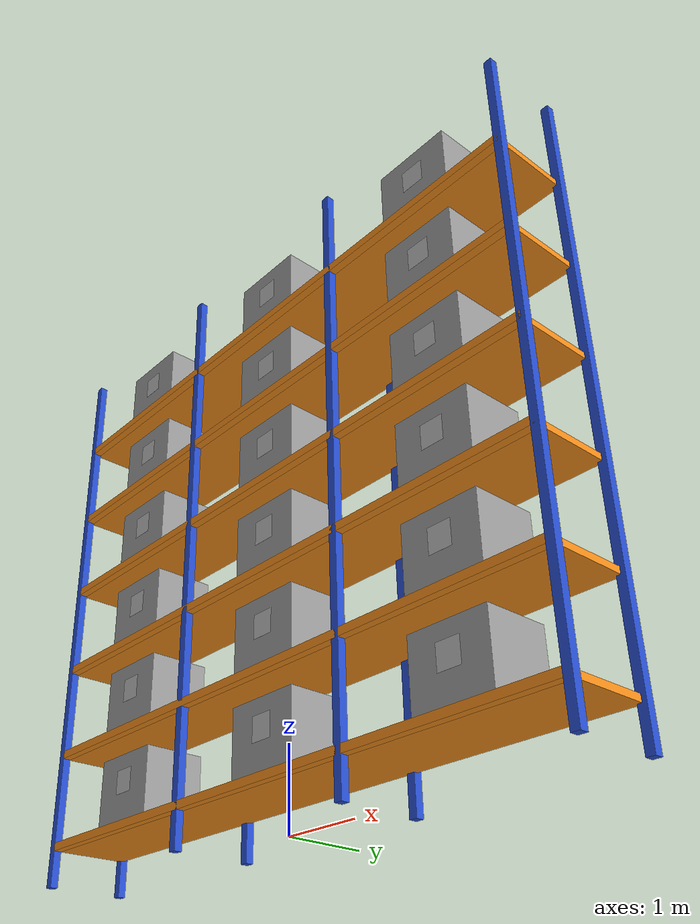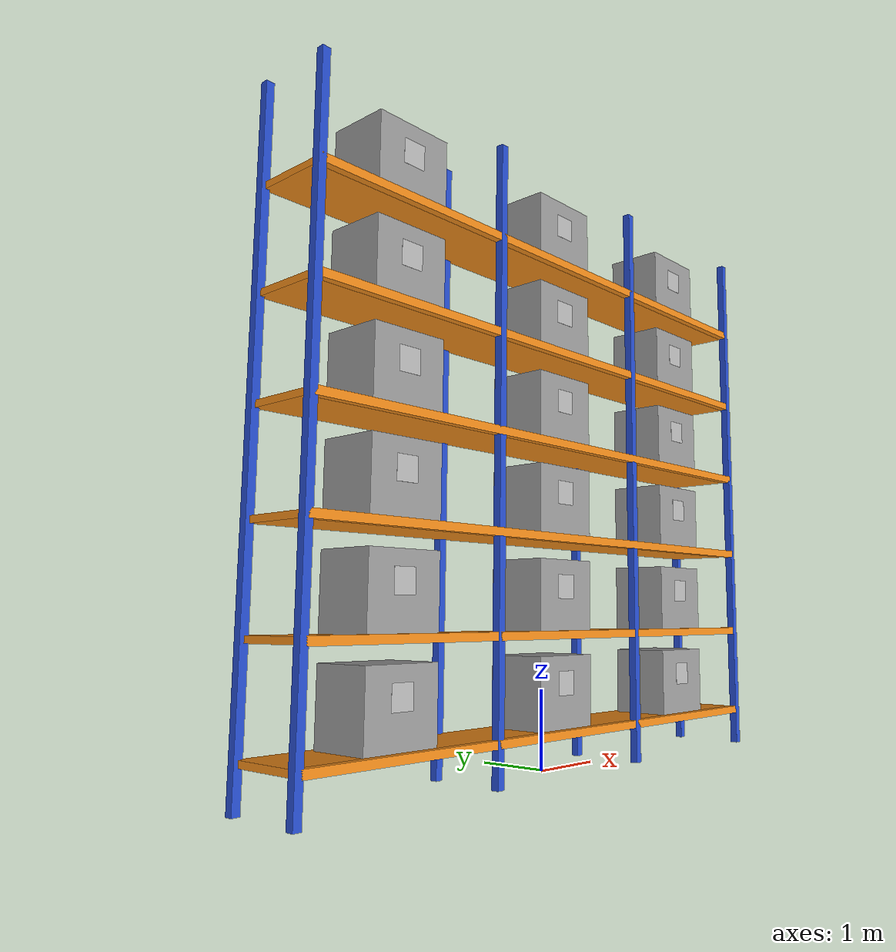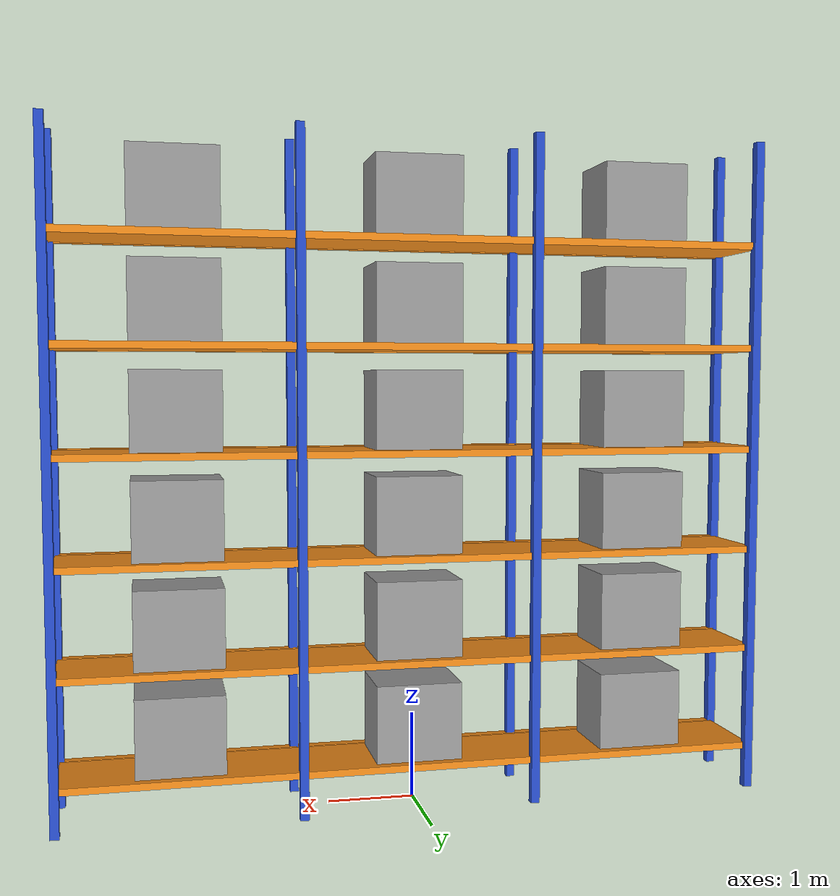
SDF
<?xml version='1.0'?>
<sdf version='1.6'>
  <model name='warehouse_rack'>
    <static>1</static>
    <link name='upright_0_f'>
      <pose>-4.0500 -0.5000 3.8500 0 0 0</pose>
      <collision name='upright_0_f_col'>
        <geometry><box><size>0.1000 0.1000 7.7000</size></box></geometry>
      </collision>
      <visual name='upright_0_f_vis'>
        <geometry><box><size>0.1000 0.1000 7.7000</size></box></geometry>
        <material><script>
          <uri>file://media/materials/scripts/gazebo.material</uri>
          <name>Gazebo/Blue</name>
        </script></material>
      </visual>
    </link>
    <link name='upright_0_b'>
      <pose>-4.0500 0.5000 3.8500 0 0 0</pose>
      <collision name='upright_0_b_col'>
        <geometry><box><size>0.1000 0.1000 7.7000</size></box></geometry>
      </collision>
      <visual name='upright_0_b_vis'>
        <geometry><box><size>0.1000 0.1000 7.7000</size></box></geometry>
        <material><script>
          <uri>file://media/materials/scripts/gazebo.material</uri>
          <name>Gazebo/Blue</name>
        </script></material>
      </visual>
    </link>
    <link name='upright_1_f'>
      <pose>-1.3500 -0.5000 3.8500 0 0 0</pose>
      <collision name='upright_1_f_col'>
        <geometry><box><size>0.1000 0.1000 7.7000</size></box></geometry>
      </collision>
      <visual name='upright_1_f_vis'>
        <geometry><box><size>0.1000 0.1000 7.7000</size></box></geometry>
        <material><script>
          <uri>file://media/materials/scripts/gazebo.material</uri>
          <name>Gazebo/Blue</name>
        </script></material>
      </visual>
    </link>
    <link name='upright_1_b'>
      <pose>-1.3500 0.5000 3.8500 0 0 0</pose>
      <collision name='upright_1_b_col'>
        <geometry><box><size>0.1000 0.1000 7.7000</size></box></geometry>
      </collision>
      <visual name='upright_1_b_vis'>
        <geometry><box><size>0.1000 0.1000 7.7000</size></box></geometry>
        <material><script>
          <uri>file://media/materials/scripts/gazebo.material</uri>
          <name>Gazebo/Blue</name>
        </script></material>
      </visual>
    </link>
    <link name='upright_2_f'>
      <pose>1.3500 -0.5000 3.8500 0 0 0</pose>
      <collision name='upright_2_f_col'>
        <geometry><box><size>0.1000 0.1000 7.7000</size></box></geometry>
      </collision>
      <visual name='upright_2_f_vis'>
        <geometry><box><size>0.1000 0.1000 7.7000</size></box></geometry>
        <material><script>
          <uri>file://media/materials/scripts/gazebo.material</uri>
          <name>Gazebo/Blue</name>
        </script></material>
      </visual>
    </link>
    <link name='upright_2_b'>
      <pose>1.3500 0.5000 3.8500 0 0 0</pose>
      <collision name='upright_2_b_col'>
        <geometry><box><size>0.1000 0.1000 7.7000</size></box></geometry>
      </collision>
      <visual name='upright_2_b_vis'>
        <geometry><box><size>0.1000 0.1000 7.7000</size></box></geometry>
        <material><script>
          <uri>file://media/materials/scripts/gazebo.material</uri>
          <name>Gazebo/Blue</name>
        </script></material>
      </visual>
    </link>
    <link name='upright_3_f'>
      <pose>4.0500 -0.5000 3.8500 0 0 0</pose>
      <collision name='upright_3_f_col'>
        <geometry><box><size>0.1000 0.1000 7.7000</size></box></geometry>
      </collision>
      <visual name='upright_3_f_vis'>
        <geometry><box><size>0.1000 0.1000 7.7000</size></box></geometry>
        <material><script>
          <uri>file://media/materials/scripts/gazebo.material</uri>
          <name>Gazebo/Blue</name>
        </script></material>
      </visual>
    </link>
    <link name='upright_3_b'>
      <pose>4.0500 0.5000 3.8500 0 0 0</pose>
      <collision name='upright_3_b_col'>
        <geometry><box><size>0.1000 0.1000 7.7000</size></box></geometry>
      </collision>
      <visual name='upright_3_b_vis'>
        <geometry><box><size>0.1000 0.1000 7.7000</size></box></geometry>
        <material><script>
          <uri>file://media/materials/scripts/gazebo.material</uri>
          <name>Gazebo/Blue</name>
        </script></material>
      </visual>
    </link>
    <link name='deck_0'>
      <pose>0.0000 0.0000 0.5000 0 0 0</pose>
      <collision name='deck_0_col'>
        <geometry><box><size>8.1000 1.0000 0.0800</size></box></geometry>
      </collision>
      <visual name='deck_0_vis'>
        <geometry><box><size>8.1000 1.0000 0.0800</size></box></geometry>
        <material><script>
          <uri>file://media/materials/scripts/gazebo.material</uri>
          <name>Gazebo/Orange</name>
        </script></material>
      </visual>
    </link>
    <link name='frontbeam_0'>
      <pose>0.0000 -0.5000 0.5000 0 0 0</pose>
      <collision name='frontbeam_0_col'>
        <geometry><box><size>8.1000 0.1000 0.1000</size></box></geometry>
      </collision>
      <visual name='frontbeam_0_vis'>
        <geometry><box><size>8.1000 0.1000 0.1000</size></box></geometry>
        <material><script>
          <uri>file://media/materials/scripts/gazebo.material</uri>
          <name>Gazebo/Orange</name>
        </script></material>
      </visual>
    </link>
    <link name='tag_beam_level_0_bay_0'>
      <pose>-2.7000 -0.4010 1.1000 0 0 0</pose>
      <visual name='tag_beam_level_0_bay_0_vis'>
        <geometry><box><size>0.30 0.001 0.30</size></box></geometry>
        <material>
          <script>
            <uri>model://apriltag_marker/materials/scripts</uri>
            <uri>model://apriltag_marker/materials/textures</uri>
            <name>Apriltag_marker</name>
          </script>
        </material>
      </visual>
    </link>
    <link name='tag_beam_level_0_bay_1'>
      <pose>0.0000 -0.4010 1.1000 0 0 0</pose>
      <visual name='tag_beam_level_0_bay_1_vis'>
        <geometry><box><size>0.30 0.001 0.30</size></box></geometry>
        <material>
          <script>
            <uri>model://apriltag_marker/materials/scripts</uri>
            <uri>model://apriltag_marker/materials/textures</uri>
            <name>Apriltag_marker</name>
          </script>
        </material>
      </visual>
    </link>
    <link name='tag_beam_level_0_bay_2'>
      <pose>2.7000 -0.4010 1.1000 0 0 0</pose>
      <visual name='tag_beam_level_0_bay_2_vis'>
        <geometry><box><size>0.30 0.001 0.30</size></box></geometry>
        <material>
          <script>
            <uri>model://apriltag_marker/materials/scripts</uri>
            <uri>model://apriltag_marker/materials/textures</uri>
            <name>Apriltag_marker</name>
          </script>
        </material>
      </visual>
    </link>
    <link name='deck_1'>
      <pose>0.0000 0.0000 1.7000 0 0 0</pose>
      <collision name='deck_1_col'>
        <geometry><box><size>8.1000 1.0000 0.0800</size></box></geometry>
      </collision>
      <visual name='deck_1_vis'>
        <geometry><box><size>8.1000 1.0000 0.0800</size></box></geometry>
        <material><script>
          <uri>file://media/materials/scripts/gazebo.material</uri>
          <name>Gazebo/Orange</name>
        </script></material>
      </visual>
    </link>
    <link name='frontbeam_1'>
      <pose>0.0000 -0.5000 1.7000 0 0 0</pose>
      <collision name='frontbeam_1_col'>
        <geometry><box><size>8.1000 0.1000 0.1000</size></box></geometry>
      </collision>
      <visual name='frontbeam_1_vis'>
        <geometry><box><size>8.1000 0.1000 0.1000</size></box></geometry>
        <material><script>
          <uri>file://media/materials/scripts/gazebo.material</uri>
          <name>Gazebo/Orange</name>
        </script></material>
      </visual>
    </link>
    <link name='tag_beam_level_1_bay_0'>
      <pose>-2.7000 -0.4010 2.3000 0 0 0</pose>
      <visual name='tag_beam_level_1_bay_0_vis'>
        <geometry><box><size>0.30 0.001 0.30</size></box></geometry>
        <material>
          <script>
            <uri>model://apriltag_marker/materials/scripts</uri>
            <uri>model://apriltag_marker/materials/textures</uri>
            <name>Apriltag_marker</name>
          </script>
        </material>
      </visual>
    </link>
    <link name='tag_beam_level_1_bay_1'>
      <pose>0.0000 -0.4010 2.3000 0 0 0</pose>
      <visual name='tag_beam_level_1_bay_1_vis'>
        <geometry><box><size>0.30 0.001 0.30</size></box></geometry>
        <material>
          <script>
            <uri>model://apriltag_marker/materials/scripts</uri>
            <uri>model://apriltag_marker/materials/textures</uri>
            <name>Apriltag_marker</name>
          </script>
        </material>
      </visual>
    </link>
    <link name='tag_beam_level_1_bay_2'>
      <pose>2.7000 -0.4010 2.3000 0 0 0</pose>
      <visual name='tag_beam_level_1_bay_2_vis'>
        <geometry><box><size>0.30 0.001 0.30</size></box></geometry>
        <material>
          <script>
            <uri>model://apriltag_marker/materials/scripts</uri>
            <uri>model://apriltag_marker/materials/textures</uri>
            <name>Apriltag_marker</name>
          </script>
        </material>
      </visual>
    </link>
    <link name='deck_2'>
      <pose>0.0000 0.0000 2.9000 0 0 0</pose>
      <collision name='deck_2_col'>
        <geometry><box><size>8.1000 1.0000 0.0800</size></box></geometry>
      </collision>
      <visual name='deck_2_vis'>
        <geometry><box><size>8.1000 1.0000 0.0800</size></box></geometry>
        <material><script>
          <uri>file://media/materials/scripts/gazebo.material</uri>
          <name>Gazebo/Orange</name>
        </script></material>
      </visual>
    </link>
    <link name='frontbeam_2'>
      <pose>0.0000 -0.5000 2.9000 0 0 0</pose>
      <collision name='frontbeam_2_col'>
        <geometry><box><size>8.1000 0.1000 0.1000</size></box></geometry>
      </collision>
      <visual name='frontbeam_2_vis'>
        <geometry><box><size>8.1000 0.1000 0.1000</size></box></geometry>
        <material><script>
          <uri>file://media/materials/scripts/gazebo.material</uri>
          <name>Gazebo/Orange</name>
        </script></material>
      </visual>
    </link>
    <link name='tag_beam_level_2_bay_0'>
      <pose>-2.7000 -0.4010 3.5000 0 0 0</pose>
      <visual name='tag_beam_level_2_bay_0_vis'>
        <geometry><box><size>0.30 0.001 0.30</size></box></geometry>
        <material>
          <script>
            <uri>model://apriltag_marker/materials/scripts</uri>
            <uri>model://apriltag_marker/materials/textures</uri>
            <name>Apriltag_marker</name>
          </script>
        </material>
      </visual>
    </link>
    <link name='tag_beam_level_2_bay_1'>
      <pose>0.0000 -0.4010 3.5000 0 0 0</pose>
      <visual name='tag_beam_level_2_bay_1_vis'>
        <geometry><box><size>0.30 0.001 0.30</size></box></geometry>
        <material>
          <script>
            <uri>model://apriltag_marker/materials/scripts</uri>
            <uri>model://apriltag_marker/materials/textures</uri>
            <name>Apriltag_marker</name>
          </script>
        </material>
      </visual>
    </link>
    <link name='tag_beam_level_2_bay_2'>
      <pose>2.7000 -0.4010 3.5000 0 0 0</pose>
      <visual name='tag_beam_level_2_bay_2_vis'>
        <geometry><box><size>0.30 0.001 0.30</size></box></geometry>
        <material>
          <script>
            <uri>model://apriltag_marker/materials/scripts</uri>
            <uri>model://apriltag_marker/materials/textures</uri>
            <name>Apriltag_marker</name>
          </script>
        </material>
      </visual>
    </link>
    <link name='deck_3'>
      <pose>0.0000 0.0000 4.1000 0 0 0</pose>
      <collision name='deck_3_col'>
        <geometry><box><size>8.1000 1.0000 0.0800</size></box></geometry>
      </collision>
      <visual name='deck_3_vis'>
        <geometry><box><size>8.1000 1.0000 0.0800</size></box></geometry>
        <material><script>
          <uri>file://media/materials/scripts/gazebo.material</uri>
          <name>Gazebo/Orange</name>
        </script></material>
      </visual>
    </link>
    <link name='frontbeam_3'>
      <pose>0.0000 -0.5000 4.1000 0 0 0</pose>
      <collision name='frontbeam_3_col'>
        <geometry><box><size>8.1000 0.1000 0.1000</size></box></geometry>
      </collision>
      <visual name='frontbeam_3_vis'>
        <geometry><box><size>8.1000 0.1000 0.1000</size></box></geometry>
        <material><script>
          <uri>file://media/materials/scripts/gazebo.material</uri>
          <name>Gazebo/Orange</name>
        </script></material>
      </visual>
    </link>
    <link name='tag_beam_level_3_bay_0'>
      <pose>-2.7000 -0.4010 4.7000 0 0 0</pose>
      <visual name='tag_beam_level_3_bay_0_vis'>
        <geometry><box><size>0.30 0.001 0.30</size></box></geometry>
        <material>
          <script>
            <uri>model://apriltag_marker/materials/scripts</uri>
            <uri>model://apriltag_marker/materials/textures</uri>
            <name>Apriltag_marker</name>
          </script>
        </material>
      </visual>
    </link>
    <link name='tag_beam_level_3_bay_1'>
      <pose>0.0000 -0.4010 4.7000 0 0 0</pose>
      <visual name='tag_beam_level_3_bay_1_vis'>
        <geometry><box><size>0.30 0.001 0.30</size></box></geometry>
        <material>
          <script>
            <uri>model://apriltag_marker/materials/scripts</uri>
            <uri>model://apriltag_marker/materials/textures</uri>
            <name>Apriltag_marker</name>
          </script>
        </material>
      </visual>
    </link>
    <link name='tag_beam_level_3_bay_2'>
      <pose>2.7000 -0.4010 4.7000 0 0 0</pose>
      <visual name='tag_beam_level_3_bay_2_vis'>
        <geometry><box><size>0.30 0.001 0.30</size></box></geometry>
        <material>
          <script>
            <uri>model://apriltag_marker/materials/scripts</uri>
            <uri>model://apriltag_marker/materials/textures</uri>
            <name>Apriltag_marker</name>
          </script>
        </material>
      </visual>
    </link>
    <link name='deck_4'>
      <pose>0.0000 0.0000 5.3000 0 0 0</pose>
      <collision name='deck_4_col'>
        <geometry><box><size>8.1000 1.0000 0.0800</size></box></geometry>
      </collision>
      <visual name='deck_4_vis'>
        <geometry><box><size>8.1000 1.0000 0.0800</size></box></geometry>
        <material><script>
          <uri>file://media/materials/scripts/gazebo.material</uri>
          <name>Gazebo/Orange</name>
        </script></material>
      </visual>
    </link>
    <link name='frontbeam_4'>
      <pose>0.0000 -0.5000 5.3000 0 0 0</pose>
      <collision name='frontbeam_4_col'>
        <geometry><box><size>8.1000 0.1000 0.1000</size></box></geometry>
      </collision>
      <visual name='frontbeam_4_vis'>
        <geometry><box><size>8.1000 0.1000 0.1000</size></box></geometry>
        <material><script>
          <uri>file://media/materials/scripts/gazebo.material</uri>
          <name>Gazebo/Orange</name>
        </script></material>
      </visual>
    </link>
    <link name='tag_beam_level_4_bay_0'>
      <pose>-2.7000 -0.4010 5.9000 0 0 0</pose>
      <visual name='tag_beam_level_4_bay_0_vis'>
        <geometry><box><size>0.30 0.001 0.30</size></box></geometry>
        <material>
          <script>
            <uri>model://apriltag_marker/materials/scripts</uri>
            <uri>model://apriltag_marker/materials/textures</uri>
            <name>Apriltag_marker</name>
          </script>
        </material>
      </visual>
    </link>
    <link name='tag_beam_level_4_bay_1'>
      <pose>0.0000 -0.4010 5.9000 0 0 0</pose>
      <visual name='tag_beam_level_4_bay_1_vis'>
        <geometry><box><size>0.30 0.001 0.30</size></box></geometry>
        <material>
          <script>
            <uri>model://apriltag_marker/materials/scripts</uri>
            <uri>model://apriltag_marker/materials/textures</uri>
            <name>Apriltag_marker</name>
          </script>
        </material>
      </visual>
    </link>
    <link name='tag_beam_level_4_bay_2'>
      <pose>2.7000 -0.4010 5.9000 0 0 0</pose>
      <visual name='tag_beam_level_4_bay_2_vis'>
        <geometry><box><size>0.30 0.001 0.30</size></box></geometry>
        <material>
          <script>
            <uri>model://apriltag_marker/materials/scripts</uri>
            <uri>model://apriltag_marker/materials/textures</uri>
            <name>Apriltag_marker</name>
          </script>
        </material>
      </visual>
    </link>
    <link name='deck_5'>
      <pose>0.0000 0.0000 6.5000 0 0 0</pose>
      <collision name='deck_5_col'>
        <geometry><box><size>8.1000 1.0000 0.0800</size></box></geometry>
      </collision>
      <visual name='deck_5_vis'>
        <geometry><box><size>8.1000 1.0000 0.0800</size></box></geometry>
        <material><script>
          <uri>file://media/materials/scripts/gazebo.material</uri>
          <name>Gazebo/Orange</name>
        </script></material>
      </visual>
    </link>
    <link name='frontbeam_5'>
      <pose>0.0000 -0.5000 6.5000 0 0 0</pose>
      <collision name='frontbeam_5_col'>
        <geometry><box><size>8.1000 0.1000 0.1000</size></box></geometry>
      </collision>
      <visual name='frontbeam_5_vis'>
        <geometry><box><size>8.1000 0.1000 0.1000</size></box></geometry>
        <material><script>
          <uri>file://media/materials/scripts/gazebo.material</uri>
          <name>Gazebo/Orange</name>
        </script></material>
      </visual>
    </link>
    <link name='tag_beam_level_5_bay_0'>
      <pose>-2.7000 -0.4010 7.1000 0 0 0</pose>
      <visual name='tag_beam_level_5_bay_0_vis'>
        <geometry><box><size>0.30 0.001 0.30</size></box></geometry>
        <material>
          <script>
            <uri>model://apriltag_marker/materials/scripts</uri>
            <uri>model://apriltag_marker/materials/textures</uri>
            <name>Apriltag_marker</name>
          </script>
        </material>
      </visual>
    </link>
    <link name='tag_beam_level_5_bay_1'>
      <pose>0.0000 -0.4010 7.1000 0 0 0</pose>
      <visual name='tag_beam_level_5_bay_1_vis'>
        <geometry><box><size>0.30 0.001 0.30</size></box></geometry>
        <material>
          <script>
            <uri>model://apriltag_marker/materials/scripts</uri>
            <uri>model://apriltag_marker/materials/textures</uri>
            <name>Apriltag_marker</name>
          </script>
        </material>
      </visual>
    </link>
    <link name='tag_beam_level_5_bay_2'>
      <pose>2.7000 -0.4010 7.1000 0 0 0</pose>
      <visual name='tag_beam_level_5_bay_2_vis'>
        <geometry><box><size>0.30 0.001 0.30</size></box></geometry>
        <material>
          <script>
            <uri>model://apriltag_marker/materials/scripts</uri>
            <uri>model://apriltag_marker/materials/textures</uri>
            <name>Apriltag_marker</name>
          </script>
        </material>
      </visual>
    </link>
    <link name='pallet_0_0'>
      <pose>-2.7000 0.0000 0.9900 0 0 0</pose>
      <collision name='pallet_0_0_col'>
        <geometry><box><size>1.0000 0.8000 0.9000</size></box></geometry>
      </collision>
      <visual name='pallet_0_0_vis'>
        <geometry><box><size>1.0000 0.8000 0.9000</size></box></geometry>
        <material><script>
          <uri>file://media/materials/scripts/gazebo.material</uri>
          <name>Gazebo/Grey</name>
        </script></material>
      </visual>
    </link>
    <link name='pallet_0_1'>
      <pose>0.0000 0.0000 0.9900 0 0 0</pose>
      <collision name='pallet_0_1_col'>
        <geometry><box><size>1.0000 0.8000 0.9000</size></box></geometry>
      </collision>
      <visual name='pallet_0_1_vis'>
        <geometry><box><size>1.0000 0.8000 0.9000</size></box></geometry>
        <material><script>
          <uri>file://media/materials/scripts/gazebo.material</uri>
          <name>Gazebo/Grey</name>
        </script></material>
      </visual>
    </link>
    <link name='pallet_0_2'>
      <pose>2.7000 0.0000 0.9900 0 0 0</pose>
      <collision name='pallet_0_2_col'>
        <geometry><box><size>1.0000 0.8000 0.9000</size></box></geometry>
      </collision>
      <visual name='pallet_0_2_vis'>
        <geometry><box><size>1.0000 0.8000 0.9000</size></box></geometry>
        <material><script>
          <uri>file://media/materials/scripts/gazebo.material</uri>
          <name>Gazebo/Grey</name>
        </script></material>
      </visual>
    </link>
    <link name='pallet_1_0'>
      <pose>-2.7000 0.0000 2.1900 0 0 0</pose>
      <collision name='pallet_1_0_col'>
        <geometry><box><size>1.0000 0.8000 0.9000</size></box></geometry>
      </collision>
      <visual name='pallet_1_0_vis'>
        <geometry><box><size>1.0000 0.8000 0.9000</size></box></geometry>
        <material><script>
          <uri>file://media/materials/scripts/gazebo.material</uri>
          <name>Gazebo/Grey</name>
        </script></material>
      </visual>
    </link>
    <link name='pallet_1_1'>
      <pose>0.0000 0.0000 2.1900 0 0 0</pose>
      <collision name='pallet_1_1_col'>
        <geometry><box><size>1.0000 0.8000 0.9000</size></box></geometry>
      </collision>
      <visual name='pallet_1_1_vis'>
        <geometry><box><size>1.0000 0.8000 0.9000</size></box></geometry>
        <material><script>
          <uri>file://media/materials/scripts/gazebo.material</uri>
          <name>Gazebo/Grey</name>
        </script></material>
      </visual>
    </link>
    <link name='pallet_1_2'>
      <pose>2.7000 0.0000 2.1900 0 0 0</pose>
      <collision name='pallet_1_2_col'>
        <geometry><box><size>1.0000 0.8000 0.9000</size></box></geometry>
      </collision>
      <visual name='pallet_1_2_vis'>
        <geometry><box><size>1.0000 0.8000 0.9000</size></box></geometry>
        <material><script>
          <uri>file://media/materials/scripts/gazebo.material</uri>
          <name>Gazebo/Grey</name>
        </script></material>
      </visual>
    </link>
    <link name='pallet_2_0'>
      <pose>-2.7000 0.0000 3.3900 0 0 0</pose>
      <collision name='pallet_2_0_col'>
        <geometry><box><size>1.0000 0.8000 0.9000</size></box></geometry>
      </collision>
      <visual name='pallet_2_0_vis'>
        <geometry><box><size>1.0000 0.8000 0.9000</size></box></geometry>
        <material><script>
          <uri>file://media/materials/scripts/gazebo.material</uri>
          <name>Gazebo/Grey</name>
        </script></material>
      </visual>
    </link>
    <link name='pallet_2_1'>
      <pose>0.0000 0.0000 3.3900 0 0 0</pose>
      <collision name='pallet_2_1_col'>
        <geometry><box><size>1.0000 0.8000 0.9000</size></box></geometry>
      </collision>
      <visual name='pallet_2_1_vis'>
        <geometry><box><size>1.0000 0.8000 0.9000</size></box></geometry>
        <material><script>
          <uri>file://media/materials/scripts/gazebo.material</uri>
          <name>Gazebo/Grey</name>
        </script></material>
      </visual>
    </link>
    <link name='pallet_2_2'>
      <pose>2.7000 0.0000 3.3900 0 0 0</pose>
      <collision name='pallet_2_2_col'>
        <geometry><box><size>1.0000 0.8000 0.9000</size></box></geometry>
      </collision>
      <visual name='pallet_2_2_vis'>
        <geometry><box><size>1.0000 0.8000 0.9000</size></box></geometry>
        <material><script>
          <uri>file://media/materials/scripts/gazebo.material</uri>
          <name>Gazebo/Grey</name>
        </script></material>
      </visual>
    </link>
    <link name='pallet_3_0'>
      <pose>-2.7000 0.0000 4.5900 0 0 0</pose>
      <collision name='pallet_3_0_col'>
        <geometry><box><size>1.0000 0.8000 0.9000</size></box></geometry>
      </collision>
      <visual name='pallet_3_0_vis'>
        <geometry><box><size>1.0000 0.8000 0.9000</size></box></geometry>
        <material><script>
          <uri>file://media/materials/scripts/gazebo.material</uri>
          <name>Gazebo/Grey</name>
        </script></material>
      </visual>
    </link>
    <link name='pallet_3_1'>
      <pose>0.0000 0.0000 4.5900 0 0 0</pose>
      <collision name='pallet_3_1_col'>
        <geometry><box><size>1.0000 0.8000 0.9000</size></box></geometry>
      </collision>
      <visual name='pallet_3_1_vis'>
        <geometry><box><size>1.0000 0.8000 0.9000</size></box></geometry>
        <material><script>
          <uri>file://media/materials/scripts/gazebo.material</uri>
          <name>Gazebo/Grey</name>
        </script></material>
      </visual>
    </link>
    <link name='pallet_3_2'>
      <pose>2.7000 0.0000 4.5900 0 0 0</pose>
      <collision name='pallet_3_2_col'>
        <geometry><box><size>1.0000 0.8000 0.9000</size></box></geometry>
      </collision>
      <visual name='pallet_3_2_vis'>
        <geometry><box><size>1.0000 0.8000 0.9000</size></box></geometry>
        <material><script>
          <uri>file://media/materials/scripts/gazebo.material</uri>
          <name>Gazebo/Grey</name>
        </script></material>
      </visual>
    </link>
    <link name='pallet_4_0'>
      <pose>-2.7000 0.0000 5.7900 0 0 0</pose>
      <collision name='pallet_4_0_col'>
        <geometry><box><size>1.0000 0.8000 0.9000</size></box></geometry>
      </collision>
      <visual name='pallet_4_0_vis'>
        <geometry><box><size>1.0000 0.8000 0.9000</size></box></geometry>
        <material><script>
          <uri>file://media/materials/scripts/gazebo.material</uri>
          <name>Gazebo/Grey</name>
        </script></material>
      </visual>
    </link>
    <link name='pallet_4_1'>
      <pose>0.0000 0.0000 5.7900 0 0 0</pose>
      <collision name='pallet_4_1_col'>
        <geometry><box><size>1.0000 0.8000 0.9000</size></box></geometry>
      </collision>
      <visual name='pallet_4_1_vis'>
        <geometry><box><size>1.0000 0.8000 0.9000</size></box></geometry>
        <material><script>
          <uri>file://media/materials/scripts/gazebo.material</uri>
          <name>Gazebo/Grey</name>
        </script></material>
      </visual>
    </link>
    <link name='pallet_4_2'>
      <pose>2.7000 0.0000 5.7900 0 0 0</pose>
      <collision name='pallet_4_2_col'>
        <geometry><box><size>1.0000 0.8000 0.9000</size></box></geometry>
      </collision>
      <visual name='pallet_4_2_vis'>
        <geometry><box><size>1.0000 0.8000 0.9000</size></box></geometry>
        <material><script>
          <uri>file://media/materials/scripts/gazebo.material</uri>
          <name>Gazebo/Grey</name>
        </script></material>
      </visual>
    </link>
    <link name='pallet_5_0'>
      <pose>-2.7000 0.0000 6.9900 0 0 0</pose>
      <collision name='pallet_5_0_col'>
        <geometry><box><size>1.0000 0.8000 0.9000</size></box></geometry>
      </collision>
      <visual name='pallet_5_0_vis'>
        <geometry><box><size>1.0000 0.8000 0.9000</size></box></geometry>
        <material><script>
          <uri>file://media/materials/scripts/gazebo.material</uri>
          <name>Gazebo/Grey</name>
        </script></material>
      </visual>
    </link>
    <link name='pallet_5_1'>
      <pose>0.0000 0.0000 6.9900 0 0 0</pose>
      <collision name='pallet_5_1_col'>
        <geometry><box><size>1.0000 0.8000 0.9000</size></box></geometry>
      </collision>
      <visual name='pallet_5_1_vis'>
        <geometry><box><size>1.0000 0.8000 0.9000</size></box></geometry>
        <material><script>
          <uri>file://media/materials/scripts/gazebo.material</uri>
          <name>Gazebo/Grey</name>
        </script></material>
      </visual>
    </link>
    <link name='pallet_5_2'>
      <pose>2.7000 0.0000 6.9900 0 0 0</pose>
      <collision name='pallet_5_2_col'>
        <geometry><box><size>1.0000 0.8000 0.9000</size></box></geometry>
      </collision>
      <visual name='pallet_5_2_vis'>
        <geometry><box><size>1.0000 0.8000 0.9000</size></box></geometry>
        <material><script>
          <uri>file://media/materials/scripts/gazebo.material</uri>
          <name>Gazebo/Grey</name>
        </script></material>
      </visual>
    </link>
  </model>
</sdf>
